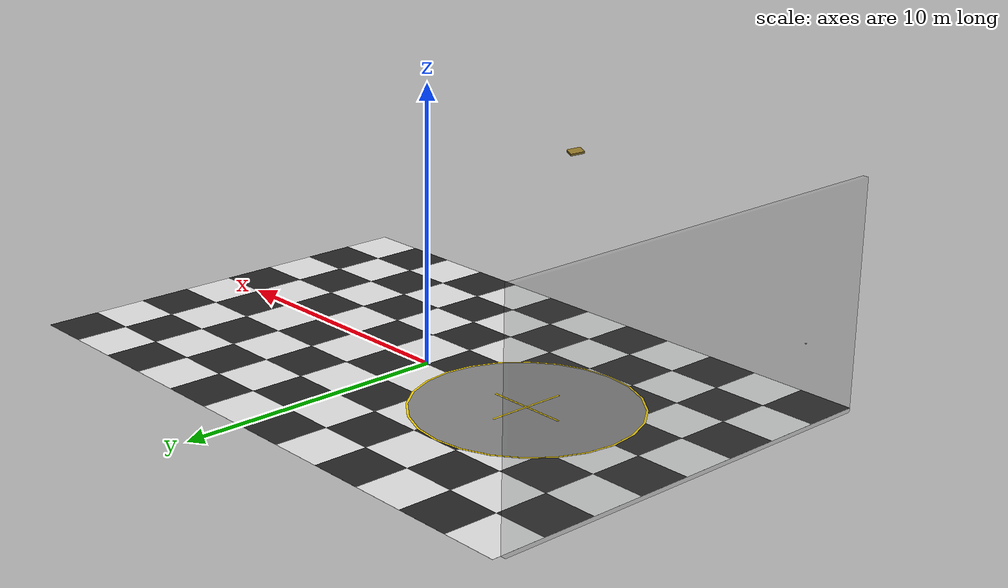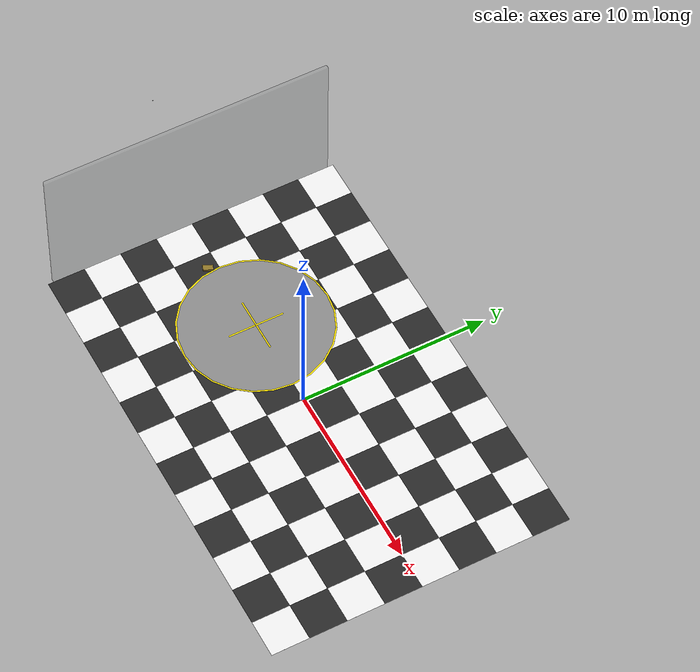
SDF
<sdf version="1.9">
 <world name="hangar">
  <model name="ground_plane">
   <static>true</static>
   <link name="link">
    <collision name="collision">
     <geometry><plane><normal>0 0 1</normal><size>24.0 15.0</size></plane></geometry>
    </collision>
   </link>
  </model>
  <model name="floor_tiles">
   <static>true</static>
   <pose>0 0 0.0015 0 0 0</pose>
   <link name="tiles">
    <visual name="t_00_00">
     <pose>-11.0 -7.0 0 0 0 0</pose>
     <geometry><box><size>2 2 0.001</size></box></geometry>
     <material><ambient>0.15 0.15 0.15 1</ambient><diffuse>0.15 0.15 0.15 1</diffuse></material>
    </visual>
    <visual name="t_00_01">
     <pose>-11.0 -5.0 0 0 0 0</pose>
     <geometry><box><size>2 2 0.001</size></box></geometry>
     <material><ambient>0.9 0.9 0.9 1</ambient><diffuse>0.9 0.9 0.9 1</diffuse></material>
    </visual>
    <visual name="t_00_02">
     <pose>-11.0 -3.0 0 0 0 0</pose>
     <geometry><box><size>2 2 0.001</size></box></geometry>
     <material><ambient>0.15 0.15 0.15 1</ambient><diffuse>0.15 0.15 0.15 1</diffuse></material>
    </visual>
    <visual name="t_00_03">
     <pose>-11.0 -1.0 0 0 0 0</pose>
     <geometry><box><size>2 2 0.001</size></box></geometry>
     <material><ambient>0.9 0.9 0.9 1</ambient><diffuse>0.9 0.9 0.9 1</diffuse></material>
    </visual>
    <visual name="t_00_04">
     <pose>-11.0 1.0 0 0 0 0</pose>
     <geometry><box><size>2 2 0.001</size></box></geometry>
     <material><ambient>0.15 0.15 0.15 1</ambient><diffuse>0.15 0.15 0.15 1</diffuse></material>
    </visual>
    <visual name="t_00_05">
     <pose>-11.0 3.0 0 0 0 0</pose>
     <geometry><box><size>2 2 0.001</size></box></geometry>
     <material><ambient>0.9 0.9 0.9 1</ambient><diffuse>0.9 0.9 0.9 1</diffuse></material>
    </visual>
    <visual name="t_00_06">
     <pose>-11.0 5.0 0 0 0 0</pose>
     <geometry><box><size>2 2 0.001</size></box></geometry>
     <material><ambient>0.15 0.15 0.15 1</ambient><diffuse>0.15 0.15 0.15 1</diffuse></material>
    </visual>
    <visual name="t_00_07">
     <pose>-11.0 7.0 0 0 0 0</pose>
     <geometry><box><size>2 2 0.001</size></box></geometry>
     <material><ambient>0.9 0.9 0.9 1</ambient><diffuse>0.9 0.9 0.9 1</diffuse></material>
    </visual>
    <visual name="t_01_00">
     <pose>-9.0 -7.0 0 0 0 0</pose>
     <geometry><box><size>2 2 0.001</size></box></geometry>
     <material><ambient>0.9 0.9 0.9 1</ambient><diffuse>0.9 0.9 0.9 1</diffuse></material>
    </visual>
    <visual name="t_01_01">
     <pose>-9.0 -5.0 0 0 0 0</pose>
     <geometry><box><size>2 2 0.001</size></box></geometry>
     <material><ambient>0.15 0.15 0.15 1</ambient><diffuse>0.15 0.15 0.15 1</diffuse></material>
    </visual>
    <visual name="t_01_02">
     <pose>-9.0 -3.0 0 0 0 0</pose>
     <geometry><box><size>2 2 0.001</size></box></geometry>
     <material><ambient>0.9 0.9 0.9 1</ambient><diffuse>0.9 0.9 0.9 1</diffuse></material>
    </visual>
    <visual name="t_01_03">
     <pose>-9.0 -1.0 0 0 0 0</pose>
     <geometry><box><size>2 2 0.001</size></box></geometry>
     <material><ambient>0.15 0.15 0.15 1</ambient><diffuse>0.15 0.15 0.15 1</diffuse></material>
    </visual>
    <visual name="t_01_04">
     <pose>-9.0 1.0 0 0 0 0</pose>
     <geometry><box><size>2 2 0.001</size></box></geometry>
     <material><ambient>0.9 0.9 0.9 1</ambient><diffuse>0.9 0.9 0.9 1</diffuse></material>
    </visual>
    <visual name="t_01_05">
     <pose>-9.0 3.0 0 0 0 0</pose>
     <geometry><box><size>2 2 0.001</size></box></geometry>
     <material><ambient>0.15 0.15 0.15 1</ambient><diffuse>0.15 0.15 0.15 1</diffuse></material>
    </visual>
    <visual name="t_01_06">
     <pose>-9.0 5.0 0 0 0 0</pose>
     <geometry><box><size>2 2 0.001</size></box></geometry>
     <material><ambient>0.9 0.9 0.9 1</ambient><diffuse>0.9 0.9 0.9 1</diffuse></material>
    </visual>
    <visual name="t_01_07">
     <pose>-9.0 7.0 0 0 0 0</pose>
     <geometry><box><size>2 2 0.001</size></box></geometry>
     <material><ambient>0.15 0.15 0.15 1</ambient><diffuse>0.15 0.15 0.15 1</diffuse></material>
    </visual>
    <visual name="t_02_00">
     <pose>-7.0 -7.0 0 0 0 0</pose>
     <geometry><box><size>2 2 0.001</size></box></geometry>
     <material><ambient>0.15 0.15 0.15 1</ambient><diffuse>0.15 0.15 0.15 1</diffuse></material>
    </visual>
    <visual name="t_02_01">
     <pose>-7.0 -5.0 0 0 0 0</pose>
     <geometry><box><size>2 2 0.001</size></box></geometry>
     <material><ambient>0.9 0.9 0.9 1</ambient><diffuse>0.9 0.9 0.9 1</diffuse></material>
    </visual>
    <visual name="t_02_02">
     <pose>-7.0 -3.0 0 0 0 0</pose>
     <geometry><box><size>2 2 0.001</size></box></geometry>
     <material><ambient>0.15 0.15 0.15 1</ambient><diffuse>0.15 0.15 0.15 1</diffuse></material>
    </visual>
    <visual name="t_02_03">
     <pose>-7.0 -1.0 0 0 0 0</pose>
     <geometry><box><size>2 2 0.001</size></box></geometry>
     <material><ambient>0.9 0.9 0.9 1</ambient><diffuse>0.9 0.9 0.9 1</diffuse></material>
    </visual>
    <visual name="t_02_04">
     <pose>-7.0 1.0 0 0 0 0</pose>
     <geometry><box><size>2 2 0.001</size></box></geometry>
     <material><ambient>0.15 0.15 0.15 1</ambient><diffuse>0.15 0.15 0.15 1</diffuse></material>
    </visual>
    <visual name="t_02_05">
     <pose>-7.0 3.0 0 0 0 0</pose>
     <geometry><box><size>2 2 0.001</size></box></geometry>
     <material><ambient>0.9 0.9 0.9 1</ambient><diffuse>0.9 0.9 0.9 1</diffuse></material>
    </visual>
    <visual name="t_02_06">
     <pose>-7.0 5.0 0 0 0 0</pose>
     <geometry><box><size>2 2 0.001</size></box></geometry>
     <material><ambient>0.15 0.15 0.15 1</ambient><diffuse>0.15 0.15 0.15 1</diffuse></material>
    </visual>
    <visual name="t_02_07">
     <pose>-7.0 7.0 0 0 0 0</pose>
     <geometry><box><size>2 2 0.001</size></box></geometry>
     <material><ambient>0.9 0.9 0.9 1</ambient><diffuse>0.9 0.9 0.9 1</diffuse></material>
    </visual>
    <visual name="t_03_00">
     <pose>-5.0 -7.0 0 0 0 0</pose>
     <geometry><box><size>2 2 0.001</size></box></geometry>
     <material><ambient>0.9 0.9 0.9 1</ambient><diffuse>0.9 0.9 0.9 1</diffuse></material>
    </visual>
    <visual name="t_03_01">
     <pose>-5.0 -5.0 0 0 0 0</pose>
     <geometry><box><size>2 2 0.001</size></box></geometry>
     <material><ambient>0.15 0.15 0.15 1</ambient><diffuse>0.15 0.15 0.15 1</diffuse></material>
    </visual>
    <visual name="t_03_02">
     <pose>-5.0 -3.0 0 0 0 0</pose>
     <geometry><box><size>2 2 0.001</size></box></geometry>
     <material><ambient>0.9 0.9 0.9 1</ambient><diffuse>0.9 0.9 0.9 1</diffuse></material>
    </visual>
    <visual name="t_03_03">
     <pose>-5.0 -1.0 0 0 0 0</pose>
     <geometry><box><size>2 2 0.001</size></box></geometry>
     <material><ambient>0.15 0.15 0.15 1</ambient><diffuse>0.15 0.15 0.15 1</diffuse></material>
    </visual>
    <visual name="t_03_04">
     <pose>-5.0 1.0 0 0 0 0</pose>
     <geometry><box><size>2 2 0.001</size></box></geometry>
     <material><ambient>0.9 0.9 0.9 1</ambient><diffuse>0.9 0.9 0.9 1</diffuse></material>
    </visual>
    <visual name="t_03_05">
     <pose>-5.0 3.0 0 0 0 0</pose>
     <geometry><box><size>2 2 0.001</size></box></geometry>
     <material><ambient>0.15 0.15 0.15 1</ambient><diffuse>0.15 0.15 0.15 1</diffuse></material>
    </visual>
    <visual name="t_03_06">
     <pose>-5.0 5.0 0 0 0 0</pose>
     <geometry><box><size>2 2 0.001</size></box></geometry>
     <material><ambient>0.9 0.9 0.9 1</ambient><diffuse>0.9 0.9 0.9 1</diffuse></material>
    </visual>
    <visual name="t_03_07">
     <pose>-5.0 7.0 0 0 0 0</pose>
     <geometry><box><size>2 2 0.001</size></box></geometry>
     <material><ambient>0.15 0.15 0.15 1</ambient><diffuse>0.15 0.15 0.15 1</diffuse></material>
    </visual>
    <visual name="t_04_00">
     <pose>-3.0 -7.0 0 0 0 0</pose>
     <geometry><box><size>2 2 0.001</size></box></geometry>
     <material><ambient>0.15 0.15 0.15 1</ambient><diffuse>0.15 0.15 0.15 1</diffuse></material>
    </visual>
    <visual name="t_04_01">
     <pose>-3.0 -5.0 0 0 0 0</pose>
     <geometry><box><size>2 2 0.001</size></box></geometry>
     <material><ambient>0.9 0.9 0.9 1</ambient><diffuse>0.9 0.9 0.9 1</diffuse></material>
    </visual>
    <visual name="t_04_02">
     <pose>-3.0 -3.0 0 0 0 0</pose>
     <geometry><box><size>2 2 0.001</size></box></geometry>
     <material><ambient>0.15 0.15 0.15 1</ambient><diffuse>0.15 0.15 0.15 1</diffuse></material>
    </visual>
    <visual name="t_04_03">
     <pose>-3.0 -1.0 0 0 0 0</pose>
     <geometry><box><size>2 2 0.001</size></box></geometry>
     <material><ambient>0.9 0.9 0.9 1</ambient><diffuse>0.9 0.9 0.9 1</diffuse></material>
    </visual>
    <visual name="t_04_04">
     <pose>-3.0 1.0 0 0 0 0</pose>
     <geometry><box><size>2 2 0.001</size></box></geometry>
     <material><ambient>0.15 0.15 0.15 1</ambient><diffuse>0.15 0.15 0.15 1</diffuse></material>
    </visual>
    <visual name="t_04_05">
     <pose>-3.0 3.0 0 0 0 0</pose>
     <geometry><box><size>2 2 0.001</size></box></geometry>
     <material><ambient>0.9 0.9 0.9 1</ambient><diffuse>0.9 0.9 0.9 1</diffuse></material>
    </visual>
    <visual name="t_04_06">
     <pose>-3.0 5.0 0 0 0 0</pose>
     <geometry><box><size>2 2 0.001</size></box></geometry>
     <material><ambient>0.15 0.15 0.15 1</ambient><diffuse>0.15 0.15 0.15 1</diffuse></material>
    </visual>
    <visual name="t_04_07">
     <pose>-3.0 7.0 0 0 0 0</pose>
     <geometry><box><size>2 2 0.001</size></box></geometry>
     <material><ambient>0.9 0.9 0.9 1</ambient><diffuse>0.9 0.9 0.9 1</diffuse></material>
    </visual>
    <visual name="t_05_00">
     <pose>-1.0 -7.0 0 0 0 0</pose>
     <geometry><box><size>2 2 0.001</size></box></geometry>
     <material><ambient>0.9 0.9 0.9 1</ambient><diffuse>0.9 0.9 0.9 1</diffuse></material>
    </visual>
    <visual name="t_05_01">
     <pose>-1.0 -5.0 0 0 0 0</pose>
     <geometry><box><size>2 2 0.001</size></box></geometry>
     <material><ambient>0.15 0.15 0.15 1</ambient><diffuse>0.15 0.15 0.15 1</diffuse></material>
    </visual>
    <visual name="t_05_02">
     <pose>-1.0 -3.0 0 0 0 0</pose>
     <geometry><box><size>2 2 0.001</size></box></geometry>
     <material><ambient>0.9 0.9 0.9 1</ambient><diffuse>0.9 0.9 0.9 1</diffuse></material>
    </visual>
    <visual name="t_05_03">
     <pose>-1.0 -1.0 0 0 0 0</pose>
     <geometry><box><size>2 2 0.001</size></box></geometry>
     <material><ambient>0.15 0.15 0.15 1</ambient><diffuse>0.15 0.15 0.15 1</diffuse></material>
    </visual>
    <visual name="t_05_04">
     <pose>-1.0 1.0 0 0 0 0</pose>
     <geometry><box><size>2 2 0.001</size></box></geometry>
     <material><ambient>0.9 0.9 0.9 1</ambient><diffuse>0.9 0.9 0.9 1</diffuse></material>
    </visual>
    <visual name="t_05_05">
     <pose>-1.0 3.0 0 0 0 0</pose>
     <geometry><box><size>2 2 0.001</size></box></geometry>
     <material><ambient>0.15 0.15 0.15 1</ambient><diffuse>0.15 0.15 0.15 1</diffuse></material>
    </visual>
    <visual name="t_05_06">
     <pose>-1.0 5.0 0 0 0 0</pose>
     <geometry><box><size>2 2 0.001</size></box></geometry>
     <material><ambient>0.9 0.9 0.9 1</ambient><diffuse>0.9 0.9 0.9 1</diffuse></material>
    </visual>
    <visual name="t_05_07">
     <pose>-1.0 7.0 0 0 0 0</pose>
     <geometry><box><size>2 2 0.001</size></box></geometry>
     <material><ambient>0.15 0.15 0.15 1</ambient><diffuse>0.15 0.15 0.15 1</diffuse></material>
    </visual>
    <visual name="t_06_00">
     <pose>1.0 -7.0 0 0 0 0</pose>
     <geometry><box><size>2 2 0.001</size></box></geometry>
     <material><ambient>0.15 0.15 0.15 1</ambient><diffuse>0.15 0.15 0.15 1</diffuse></material>
    </visual>
    <visual name="t_06_01">
     <pose>1.0 -5.0 0 0 0 0</pose>
     <geometry><box><size>2 2 0.001</size></box></geometry>
     <material><ambient>0.9 0.9 0.9 1</ambient><diffuse>0.9 0.9 0.9 1</diffuse></material>
    </visual>
    <visual name="t_06_02">
     <pose>1.0 -3.0 0 0 0 0</pose>
     <geometry><box><size>2 2 0.001</size></box></geometry>
     <material><ambient>0.15 0.15 0.15 1</ambient><diffuse>0.15 0.15 0.15 1</diffuse></material>
    </visual>
    <visual name="t_06_03">
     <pose>1.0 -1.0 0 0 0 0</pose>
     <geometry><box><size>2 2 0.001</size></box></geometry>
     <material><ambient>0.9 0.9 0.9 1</ambient><diffuse>0.9 0.9 0.9 1</diffuse></material>
    </visual>
    <visual name="t_06_04">
     <pose>1.0 1.0 0 0 0 0</pose>
     <geometry><box><size>2 2 0.001</size></box></geometry>
     <material><ambient>0.15 0.15 0.15 1</ambient><diffuse>0.15 0.15 0.15 1</diffuse></material>
    </visual>
    <visual name="t_06_05">
     <pose>1.0 3.0 0 0 0 0</pose>
     <geometry><box><size>2 2 0.001</size></box></geometry>
     <material><ambient>0.9 0.9 0.9 1</ambient><diffuse>0.9 0.9 0.9 1</diffuse></material>
    </visual>
    <visual name="t_06_06">
     <pose>1.0 5.0 0 0 0 0</pose>
     <geometry><box><size>2 2 0.001</size></box></geometry>
     <material><ambient>0.15 0.15 0.15 1</ambient><diffuse>0.15 0.15 0.15 1</diffuse></material>
    </visual>
    <visual name="t_06_07">
     <pose>1.0 7.0 0 0 0 0</pose>
     <geometry><box><size>2 2 0.001</size></box></geometry>
     <material><ambient>0.9 0.9 0.9 1</ambient><diffuse>0.9 0.9 0.9 1</diffuse></material>
    </visual>
    <visual name="t_07_00">
     <pose>3.0 -7.0 0 0 0 0</pose>
     <geometry><box><size>2 2 0.001</size></box></geometry>
     <material><ambient>0.9 0.9 0.9 1</ambient><diffuse>0.9 0.9 0.9 1</diffuse></material>
    </visual>
    <visual name="t_07_01">
     <pose>3.0 -5.0 0 0 0 0</pose>
     <geometry><box><size>2 2 0.001</size></box></geometry>
     <material><ambient>0.15 0.15 0.15 1</ambient><diffuse>0.15 0.15 0.15 1</diffuse></material>
    </visual>
    <visual name="t_07_02">
     <pose>3.0 -3.0 0 0 0 0</pose>
     <geometry><box><size>2 2 0.001</size></box></geometry>
     <material><ambient>0.9 0.9 0.9 1</ambient><diffuse>0.9 0.9 0.9 1</diffuse></material>
    </visual>
    <visual name="t_07_03">
     <pose>3.0 -1.0 0 0 0 0</pose>
     <geometry><box><size>2 2 0.001</size></box></geometry>
     <material><ambient>0.15 0.15 0.15 1</ambient><diffuse>0.15 0.15 0.15 1</diffuse></material>
    </visual>
    <visual name="t_07_04">
     <pose>3.0 1.0 0 0 0 0</pose>
     <geometry><box><size>2 2 0.001</size></box></geometry>
     <material><ambient>0.9 0.9 0.9 1</ambient><diffuse>0.9 0.9 0.9 1</diffuse></material>
    </visual>
    <visual name="t_07_05">
     <pose>3.0 3.0 0 0 0 0</pose>
     <geometry><box><size>2 2 0.001</size></box></geometry>
     <material><ambient>0.15 0.15 0.15 1</ambient><diffuse>0.15 0.15 0.15 1</diffuse></material>
    </visual>
    <visual name="t_07_06">
     <pose>3.0 5.0 0 0 0 0</pose>
     <geometry><box><size>2 2 0.001</size></box></geometry>
     <material><ambient>0.9 0.9 0.9 1</ambient><diffuse>0.9 0.9 0.9 1</diffuse></material>
    </visual>
    <visual name="t_07_07">
     <pose>3.0 7.0 0 0 0 0</pose>
     <geometry><box><size>2 2 0.001</size></box></geometry>
     <material><ambient>0.15 0.15 0.15 1</ambient><diffuse>0.15 0.15 0.15 1</diffuse></material>
    </visual>
    <visual name="t_08_00">
     <pose>5.0 -7.0 0 0 0 0</pose>
     <geometry><box><size>2 2 0.001</size></box></geometry>
     <material><ambient>0.15 0.15 0.15 1</ambient><diffuse>0.15 0.15 0.15 1</diffuse></material>
    </visual>
    <visual name="t_08_01">
     <pose>5.0 -5.0 0 0 0 0</pose>
     <geometry><box><size>2 2 0.001</size></box></geometry>
     <material><ambient>0.9 0.9 0.9 1</ambient><diffuse>0.9 0.9 0.9 1</diffuse></material>
    </visual>
    <visual name="t_08_02">
     <pose>5.0 -3.0 0 0 0 0</pose>
     <geometry><box><size>2 2 0.001</size></box></geometry>
     <material><ambient>0.15 0.15 0.15 1</ambient><diffuse>0.15 0.15 0.15 1</diffuse></material>
    </visual>
    <visual name="t_08_03">
     <pose>5.0 -1.0 0 0 0 0</pose>
     <geometry><box><size>2 2 0.001</size></box></geometry>
     <material><ambient>0.9 0.9 0.9 1</ambient><diffuse>0.9 0.9 0.9 1</diffuse></material>
    </visual>
    <visual name="t_08_04">
     <pose>5.0 1.0 0 0 0 0</pose>
     <geometry><box><size>2 2 0.001</size></box></geometry>
     <material><ambient>0.15 0.15 0.15 1</ambient><diffuse>0.15 0.15 0.15 1</diffuse></material>
    </visual>
    <visual name="t_08_05">
     <pose>5.0 3.0 0 0 0 0</pose>
     <geometry><box><size>2 2 0.001</size></box></geometry>
     <material><ambient>0.9 0.9 0.9 1</ambient><diffuse>0.9 0.9 0.9 1</diffuse></material>
    </visual>
    <visual name="t_08_06">
     <pose>5.0 5.0 0 0 0 0</pose>
     <geometry><box><size>2 2 0.001</size></box></geometry>
     <material><ambient>0.15 0.15 0.15 1</ambient><diffuse>0.15 0.15 0.15 1</diffuse></material>
    </visual>
    <visual name="t_08_07">
     <pose>5.0 7.0 0 0 0 0</pose>
     <geometry><box><size>2 2 0.001</size></box></geometry>
     <material><ambient>0.9 0.9 0.9 1</ambient><diffuse>0.9 0.9 0.9 1</diffuse></material>
    </visual>
    <visual name="t_09_00">
     <pose>7.0 -7.0 0 0 0 0</pose>
     <geometry><box><size>2 2 0.001</size></box></geometry>
     <material><ambient>0.9 0.9 0.9 1</ambient><diffuse>0.9 0.9 0.9 1</diffuse></material>
    </visual>
    <visual name="t_09_01">
     <pose>7.0 -5.0 0 0 0 0</pose>
     <geometry><box><size>2 2 0.001</size></box></geometry>
     <material><ambient>0.15 0.15 0.15 1</ambient><diffuse>0.15 0.15 0.15 1</diffuse></material>
    </visual>
    <visual name="t_09_02">
     <pose>7.0 -3.0 0 0 0 0</pose>
     <geometry><box><size>2 2 0.001</size></box></geometry>
     <material><ambient>0.9 0.9 0.9 1</ambient><diffuse>0.9 0.9 0.9 1</diffuse></material>
    </visual>
    <visual name="t_09_03">
     <pose>7.0 -1.0 0 0 0 0</pose>
     <geometry><box><size>2 2 0.001</size></box></geometry>
     <material><ambient>0.15 0.15 0.15 1</ambient><diffuse>0.15 0.15 0.15 1</diffuse></material>
    </visual>
    <visual name="t_09_04">
     <pose>7.0 1.0 0 0 0 0</pose>
     <geometry><box><size>2 2 0.001</size></box></geometry>
     <material><ambient>0.9 0.9 0.9 1</ambient><diffuse>0.9 0.9 0.9 1</diffuse></material>
    </visual>
    <visual name="t_09_05">
     <pose>7.0 3.0 0 0 0 0</pose>
     <geometry><box><size>2 2 0.001</size></box></geometry>
     <material><ambient>0.15 0.15 0.15 1</ambient><diffuse>0.15 0.15 0.15 1</diffuse></material>
    </visual>
    <visual name="t_09_06">
     <pose>7.0 5.0 0 0 0 0</pose>
     <geometry><box><size>2 2 0.001</size></box></geometry>
     <material><ambient>0.9 0.9 0.9 1</ambient><diffuse>0.9 0.9 0.9 1</diffuse></material>
    </visual>
    <visual name="t_09_07">
     <pose>7.0 7.0 0 0 0 0</pose>
     <geometry><box><size>2 2 0.001</size></box></geometry>
     <material><ambient>0.15 0.15 0.15 1</ambient><diffuse>0.15 0.15 0.15 1</diffuse></material>
    </visual>
    <visual name="t_10_00">
     <pose>9.0 -7.0 0 0 0 0</pose>
     <geometry><box><size>2 2 0.001</size></box></geometry>
     <material><ambient>0.15 0.15 0.15 1</ambient><diffuse>0.15 0.15 0.15 1</diffuse></material>
    </visual>
    <visual name="t_10_01">
     <pose>9.0 -5.0 0 0 0 0</pose>
     <geometry><box><size>2 2 0.001</size></box></geometry>
     <material><ambient>0.9 0.9 0.9 1</ambient><diffuse>0.9 0.9 0.9 1</diffuse></material>
    </visual>
    <visual name="t_10_02">
     <pose>9.0 -3.0 0 0 0 0</pose>
     <geometry><box><size>2 2 0.001</size></box></geometry>
     <material><ambient>0.15 0.15 0.15 1</ambient><diffuse>0.15 0.15 0.15 1</diffuse></material>
    </visual>
    <visual name="t_10_03">
     <pose>9.0 -1.0 0 0 0 0</pose>
     <geometry><box><size>2 2 0.001</size></box></geometry>
     <material><ambient>0.9 0.9 0.9 1</ambient><diffuse>0.9 0.9 0.9 1</diffuse></material>
    </visual>
    <visual name="t_10_04">
     <pose>9.0 1.0 0 0 0 0</pose>
     <geometry><box><size>2 2 0.001</size></box></geometry>
     <material><ambient>0.15 0.15 0.15 1</ambient><diffuse>0.15 0.15 0.15 1</diffuse></material>
    </visual>
    <visual name="t_10_05">
     <pose>9.0 3.0 0 0 0 0</pose>
     <geometry><box><size>2 2 0.001</size></box></geometry>
     <material><ambient>0.9 0.9 0.9 1</ambient><diffuse>0.9 0.9 0.9 1</diffuse></material>
    </visual>
    <visual name="t_10_06">
     <pose>9.0 5.0 0 0 0 0</pose>
     <geometry><box><size>2 2 0.001</size></box></geometry>
     <material><ambient>0.15 0.15 0.15 1</ambient><diffuse>0.15 0.15 0.15 1</diffuse></material>
    </visual>
    <visual name="t_10_07">
     <pose>9.0 7.0 0 0 0 0</pose>
     <geometry><box><size>2 2 0.001</size></box></geometry>
     <material><ambient>0.9 0.9 0.9 1</ambient><diffuse>0.9 0.9 0.9 1</diffuse></material>
    </visual>
    <visual name="t_11_00">
     <pose>11.0 -7.0 0 0 0 0</pose>
     <geometry><box><size>2 2 0.001</size></box></geometry>
     <material><ambient>0.9 0.9 0.9 1</ambient><diffuse>0.9 0.9 0.9 1</diffuse></material>
    </visual>
    <visual name="t_11_01">
     <pose>11.0 -5.0 0 0 0 0</pose>
     <geometry><box><size>2 2 0.001</size></box></geometry>
     <material><ambient>0.15 0.15 0.15 1</ambient><diffuse>0.15 0.15 0.15 1</diffuse></material>
    </visual>
    <visual name="t_11_02">
     <pose>11.0 -3.0 0 0 0 0</pose>
     <geometry><box><size>2 2 0.001</size></box></geometry>
     <material><ambient>0.9 0.9 0.9 1</ambient><diffuse>0.9 0.9 0.9 1</diffuse></material>
    </visual>
    <visual name="t_11_03">
     <pose>11.0 -1.0 0 0 0 0</pose>
     <geometry><box><size>2 2 0.001</size></box></geometry>
     <material><ambient>0.15 0.15 0.15 1</ambient><diffuse>0.15 0.15 0.15 1</diffuse></material>
    </visual>
    <visual name="t_11_04">
     <pose>11.0 1.0 0 0 0 0</pose>
     <geometry><box><size>2 2 0.001</size></box></geometry>
     <material><ambient>0.9 0.9 0.9 1</ambient><diffuse>0.9 0.9 0.9 1</diffuse></material>
    </visual>
    <visual name="t_11_05">
     <pose>11.0 3.0 0 0 0 0</pose>
     <geometry><box><size>2 2 0.001</size></box></geometry>
     <material><ambient>0.15 0.15 0.15 1</ambient><diffuse>0.15 0.15 0.15 1</diffuse></material>
    </visual>
    <visual name="t_11_06">
     <pose>11.0 5.0 0 0 0 0</pose>
     <geometry><box><size>2 2 0.001</size></box></geometry>
     <material><ambient>0.9 0.9 0.9 1</ambient><diffuse>0.9 0.9 0.9 1</diffuse></material>
    </visual>
    <visual name="t_11_07">
     <pose>11.0 7.0 0 0 0 0</pose>
     <geometry><box><size>2 2 0.001</size></box></geometry>
     <material><ambient>0.15 0.15 0.15 1</ambient><diffuse>0.15 0.15 0.15 1</diffuse></material>
    </visual>
   </link>
  </model>
  <model name="pad_1_ring">
   <static>true</static>
   <pose>-5 0 0.003 0 0 0</pose>
   <link name="link">
    <visual name="v">
     <visibility_flags>2</visibility_flags>
     <geometry><cylinder><radius>4.0</radius><length>0.002</length></cylinder></geometry>
     <material><ambient>1.0 0.85 0.0 1</ambient><diffuse>1.0 0.85 0.0 1</diffuse></material>
    </visual>
   </link>
  </model>
  <model name="pad_1_fill">
   <static>true</static>
   <pose>-5 0 0.004 0 0 0</pose>
   <link name="link">
    <visual name="v">
     <visibility_flags>2</visibility_flags>
     <geometry><cylinder><radius>3.92</radius><length>0.002</length></cylinder></geometry>
     <material><ambient>0.52 0.52 0.52 1</ambient><diffuse>0.52 0.52 0.52 1</diffuse></material>
    </visual>
   </link>
  </model>
  <model name="pad_1_cross_h">
   <static>true</static>
   <pose>-5 0 0.006 0 0 0</pose>
   <link name="link">
    <visual name="v">
     <visibility_flags>2</visibility_flags>
     <geometry><box><size>3.0 0.08 0.002</size></box></geometry>
     <material><ambient>1.0 0.85 0.0 1</ambient><diffuse>1.0 0.85 0.0 1</diffuse></material>
    </visual>
   </link>
  </model>
  <model name="pad_1_cross_v">
   <static>true</static>
   <pose>-5 0 0.006 0 0 0</pose>
   <link name="link">
    <visual name="v">
     <visibility_flags>2</visibility_flags>
     <geometry><box><size>0.08 3.0 0.002</size></box></geometry>
     <material><ambient>1.0 0.85 0.0 1</ambient><diffuse>1.0 0.85 0.0 1</diffuse></material>
    </visual>
   </link>
  </model>
  <model name="wall_south">
   <static>true</static>
   <pose>-12.1 0 4.0 0 0 0</pose>
   <link name="link">
    <collision name="c"><geometry><box><size>0.2 15.4 8.0</size></box></geometry></collision>
    <visual name="v">
     <visibility_flags>1</visibility_flags>
     <transparency>0.78</transparency>
     <geometry><box><size>0.2 15.4 8.0</size></box></geometry>
     <material>
      <ambient>0.42 0.44 0.45 0.22</ambient>
      <diffuse>0.42 0.44 0.45 0.22</diffuse>
      <specular>0.18 0.18 0.18 0.22</specular>
     </material>
    </visual>
   </link>
  </model>
  <model name="ceiling_debris_2">
   <static>true</static>
   <pose>-4 -3 7.96 -0.2 0.1 1.2</pose>
   <link name="link">
    <visual name="v">
     <geometry><box><size>0.5 0.35 0.08</size></box></geometry>
     <material><ambient>0.55 0.45 0.15 1</ambient><diffuse>0.55 0.45 0.15 1</diffuse></material>
    </visual>
   </link>
  </model>
  <include>
   <uri>model://mono_cam_hd</uri>
   <name>fixed_cam</name>
   <pose>-16 0 5.5 0 0.4 0</pose>
   <static>true</static>
  </include>
 </world>
</sdf>
